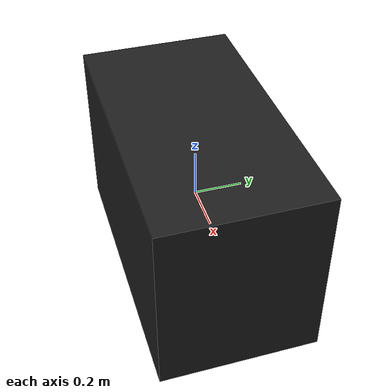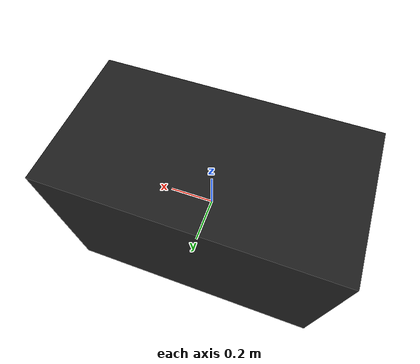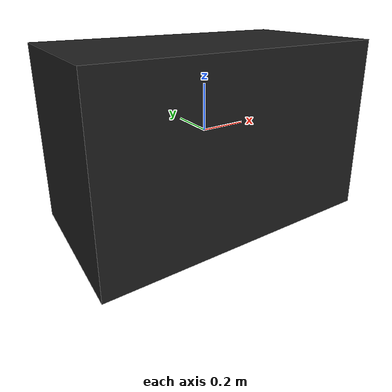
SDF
<?xml version='1.0'?>
<sdf version="1.4">
<model name="demonstration_table">
  <static>true</static>
    <link name="link">
      <inertial>
        <mass>1.0</mass>
        <inertia>
          <!-- http://answers.gazebosim.org/question/4372/the-inertia-matrix-explained/ -->
          <ixx>0.083</ixx>       <!-- for a box: ixx = 0.083 * mass * (y*y + z*z) -->
          <ixy>0.0</ixy>         <!-- for a box: ixy = 0 -->
          <ixz>0.0</ixz>         <!-- for a box: ixz = 0 -->
          <iyy>0.083</iyy>       <!-- for a box: iyy = 0.083 * mass * (x*x + z*z) -->
          <iyz>0.0</iyz>         <!-- for a box: iyz = 0 -->
          <izz>0.083</izz>       <!-- for a box: izz = 0.083 * mass * (x*x + y*y) -->
        </inertia>
      </inertial>
      <collision name="collision">
        <geometry>
          <box>
            <size>1.2 0.65 0.75</size>
          </box>
        </geometry>
      </collision>
      <visual name="visual">
        <geometry>
          <box>
            <size>1.2 0.65 0.75</size>
          </box>
        </geometry>
        <material>
          <script>
            <uri>file://media/materials/scripts/gazebo.material</uri>
            <name>Gazebo/Black</name>
          </script>
        </material>
      </visual>
    </link>
  </model>
</sdf>
